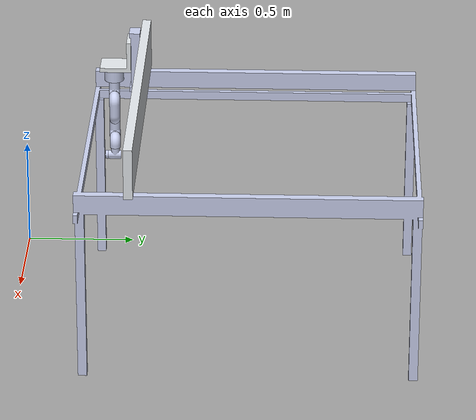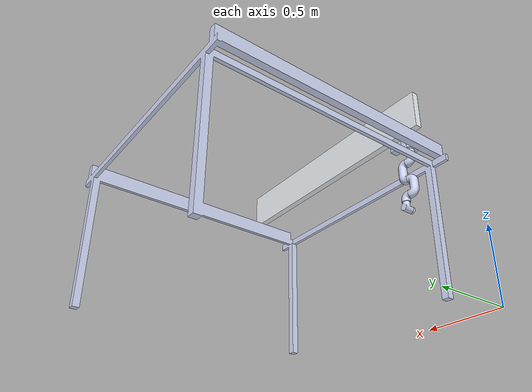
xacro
<?xml version="1.0"?>
<robot xmlns:xacro="http://www.ros.org/wiki/xacro" name="mini_TREX_complete">
    <xacro:arg name="initial_positions_file" default="initial_positions.yaml" />

    <!-- Import mini_TREX_complete urdf file -->
    <xacro:include filename="$(find test_urdf_mini_trex)/urdf/mini_TREX_complete.urdf" />

    <!-- Import control_xacro -->
    <xacro:include filename="mini_TREX_complete.ros2_control.xacro" />

    <xacro:mini_TREX_complete_ros2_control name="FakeSystem" initial_positions_file="$(arg initial_positions_file)"/>

</robot>

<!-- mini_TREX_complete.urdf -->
<robot
  name="mini_TREX_complete">
<link name="base_footprint">
    <visual>
        <origin xyz="0 0 0" rpy="0 0 0" />
        <geometry>
            <box size="0.001 0.001 0.001" />
        </geometry>
    </visual>
</link>

<joint name="base_footprint_joint" type="fixed">
    <origin xyz="0 0 0.001" rpy="0 0 0" />
    <parent link="base_footprint"/>
    <child link="base_link" />
</joint>
  <link
    name="base_link">
    <inertial>
      <origin
        xyz="0.71563 1.093 0.7213"
        rpy="0 0 0" />
      <mass
        value="19.498" />
      <inertia
        ixx="7.4094"
        ixy="-1.3444E-14"
        ixz="2.2885E-14"
        iyy="9.2813"
        iyz="-1.6175E-14"
        izz="14.559" />
    </inertial>
    <visual>
      <origin
        xyz="0 0 0"
        rpy="0 0 0" />
      <geometry>
        <mesh
          filename="package://test_urdf_mini_trex/meshes/visual/base_link.STL" />
      </geometry>
      <material
        name="">
        <color
          rgba="0.79216 0.81961 0.93333 1" />
      </material>
    </visual>
    <collision>
      <origin
        xyz="0 0 0"
        rpy="0 0 0" />
      <geometry>
        <mesh
          filename="package://test_urdf_mini_trex/meshes/visual/base_link.STL" />
      </geometry>
    </collision>
  </link>
  <link
    name="y_axis_link">
    <inertial>
      <origin
        xyz="-0.6945 -0.24 0.115"
        rpy="0 0 0" />
      <mass
        value="13.901" />
      <inertia
        ixx="0.063135"
        ixy="1.1276E-17"
        ixz="-1.8504E-17"
        iyy="2.7061"
        iyz="-3.8485E-19"
        izz="2.6467" />
    </inertial>
    <visual>
      <origin
        xyz="0 0 0"
        rpy="0 0 0" />
      <geometry>
        <mesh
          filename="package://test_urdf_mini_trex/meshes/visual/y_axis_link.STL" />
      </geometry>
      <material
        name="">
        <color
          rgba="0.89412 0.91373 0.92941 1" />
      </material>
    </visual>
    <collision>
      <origin
        xyz="0 0 0"
        rpy="0 0 0" />
      <geometry>
        <mesh
          filename="package://test_urdf_mini_trex/meshes/visual/y_axis_link.STL" />
      </geometry>
    </collision>
  </link>
  <joint
    name="y_axis_joint"
    type="prismatic">
    <origin
      xyz="0.015632 0.33748 0.8999"
      rpy="0 0 3.1416" />
    <parent
      link="base_link" />
    <child
      link="y_axis_link" />
    <axis
      xyz="0 1 0" />
    <limit
      lower="-1.24"
      upper="0"
      effort="3"
      velocity="3" />
  </joint>
  <link
    name="x_axis_link">
    <inertial>
      <origin
        xyz="-0.1905 -0.021667 0.085"
        rpy="0 0 0" />
      <mass
        value="1.008" />
      <inertia
        ixx="0.0076264"
        ixy="3.5899E-20"
        ixz="1.5455E-19"
        iyy="0.0080033"
        iyz="1.772E-19"
        izz="0.00069832" />
    </inertial>
    <visual>
      <origin
        xyz="0 0 0"
        rpy="0 0 0" />
      <geometry>
        <mesh
          filename="package://test_urdf_mini_trex/meshes/visual/x_axis_link.STL" />
      </geometry>
      <material
        name="">
        <color
          rgba="0.79216 0.81961 0.93333 1" />
      </material>
    </visual>
    <collision>
      <origin
        xyz="0 0 0"
        rpy="0 0 0" />
      <geometry>
        <mesh
          filename="package://test_urdf_mini_trex/meshes/visual/x_axis_link.STL" />
      </geometry>
    </collision>
  </link>
  <joint
    name="x_axis_joint"
    type="prismatic">
    <origin
      xyz="0.061 -0.22 0.19"
      rpy="3.1416 0 0" />
    <parent
      link="y_axis_link" />
    <child
      link="x_axis_link" />
    <axis
      xyz="1 0 0" />
    <limit
      lower="-1.05"
      upper="0"
      effort="3"
      velocity="3" />
  </joint>
  <link
    name="z_axis_link">
    <inertial>
      <origin
        xyz="1.7375E-14 -0.060565 0.14244"
        rpy="0 0 0" />
      <mass
        value="1.8225" />
      <inertia
        ixx="0.007026"
        ixy="1.5492E-19"
        ixz="7.9273E-19"
        iyy="0.005886"
        iyz="0.0020532"
        izz="0.005886" />
    </inertial>
    <visual>
      <origin
        xyz="0 0 0"
        rpy="0 0 0" />
      <geometry>
        <mesh
          filename="package://test_urdf_mini_trex/meshes/visual/z_axis_link.STL" />
      </geometry>
      <material
        name="">
        <color
          rgba="0.89804 0.91765 0.92941 1" />
      </material>
    </visual>
    <collision>
      <origin
        xyz="0 0 0"
        rpy="0 0 0" />
      <geometry>
        <mesh
          filename="package://test_urdf_mini_trex/meshes/visual/z_axis_link.STL" />
      </geometry>
    </collision>
  </link>
  <joint
    name="z_axis_joint"
    type="prismatic">
    <origin
      xyz="-0.1905 -0.025 -0.061"
      rpy="0 0 0" />
    <parent
      link="x_axis_link" />
    <child
      link="z_axis_link" />
    <axis
      xyz="0 0 -1" />
    <limit
      lower="-0.1"
      upper="0"
      effort="0"
      velocity="0" />
  </joint>
  <link
    name="fixed_base_manipulator">
    <inertial>
      <origin
        xyz="5.5511E-17 0 0.030575"
        rpy="0 0 0" />
      <mass
        value="0.38902" />
      <inertia
        ixx="0.00031816"
        ixy="5.5227E-21"
        ixz="1.358E-20"
        iyy="0.00031816"
        iyz="-3.1279E-20"
        izz="0.00039388" />
    </inertial>
    <visual>
      <origin
        xyz="0 0 0"
        rpy="0 0 0" />
      <geometry>
        <mesh
          filename="package://test_urdf_mini_trex/meshes/visual/fixed_base_manipulator.STL" />
      </geometry>
      <material
        name="">
        <color
          rgba="0.79216 0.81961 0.93333 1" />
      </material>
    </visual>
    <collision>
      <origin
        xyz="0 0 0"
        rpy="0 0 0" />
      <geometry>
        <mesh
          filename="package://test_urdf_mini_trex/meshes/visual/fixed_base_manipulator.STL" />
      </geometry>
    </collision>
  </link>
  <joint
    name="fixed_base_joint"
    type="fixed">
    <origin
      xyz="0 -0.0995 0.186"
      rpy="0 0 0" />
    <parent
      link="z_axis_link" />
    <child
      link="fixed_base_manipulator" />
    <axis
      xyz="0 0 0" />
  </joint>
  <link
    name="link_1">
    <inertial>
      <origin
        xyz="-0.00471591007394795 0.000327841802531925 0.0449329912291735"
        rpy="0 0 0" />
      <mass
        value="0.182388908186938" />
      <inertia
        ixx="0.000144569969287715"
        ixy="6.05000994865696E-07"
        ixz="2.35810769770445E-05"
        iyy="0.000153230676050563"
        iyz="-1.63931513972334E-06"
        izz="6.57413577887617E-05" />
    </inertial>
    <visual>
      <origin
        xyz="0 0 0"
        rpy="0 0 0" />
      <geometry>
        <mesh
          filename="package://test_urdf_mini_trex/meshes/visual/link_1.STL" />
      </geometry>
      <material
        name="">
        <color
          rgba="0.792156862745098 0.819607843137255 0.933333333333333 1" />
      </material>
    </visual>
    <collision>
      <origin
        xyz="0 0 0"
        rpy="0 0 0" />
      <geometry>
        <mesh
          filename="package://test_urdf_mini_trex/meshes/visual/link_1.STL" />
      </geometry>
    </collision>
  </link>
  <joint
    name="joint_1"
    type="revolute">
    <origin
      xyz="0 0 0.06115"
      rpy="0 0 0" />
    <parent
      link="fixed_base_manipulator" />
    <child
      link="link_1" />
    <axis
      xyz="0 0 -1" />
    <limit
      lower="-2.88"
      upper="2.88"
      effort="0"
      velocity="0" />
  </joint>
  <link
    name="link_2">
    <inertial>
      <origin
        xyz="-0.02339 0.001626 0.0552"
        rpy="0 0 0" />
      <mass
        value="0.30501" />
      <inertia
        ixx="0.00059723"
        ixy="1.0995E-06"
        ixz="2.2849E-16"
        iyy="0.00061297"
        iyz="3.277E-15"
        izz="0.00011121" />
    </inertial>
    <visual>
      <origin
        xyz="0 0 0"
        rpy="0 0 0" />
      <geometry>
        <mesh
          filename="package://test_urdf_mini_trex/meshes/visual/link_2.STL" />
      </geometry>
      <material
        name="">
        <color
          rgba="0.79216 0.81961 0.93333 1" />
      </material>
    </visual>
    <collision>
      <origin
        xyz="0 0 0"
        rpy="0 0 0" />
      <geometry>
        <mesh
          filename="package://test_urdf_mini_trex/meshes/visual/link_2.STL" />
      </geometry>
    </collision>
  </link>
  <joint
    name="joint_2"
    type="revolute">
    <origin
      xyz="-0.03721 0.0025868 0.07042"
      rpy="0 0 0" />
    <parent
      link="link_1" />
    <child
      link="link_2" />
    <axis
      xyz="0.99759 -0.069351 0" />
    <limit
      lower="-2.88"
      upper="2.88"
      effort="0"
      velocity="0" />
  </joint>
  <link
    name="link_3">
    <inertial>
      <origin
        xyz="0.022814 -0.001586 0.048"
        rpy="0 0 0" />
      <mass
        value="0.27673" />
      <inertia
        ixx="0.0004455"
        ixy="1.0306E-06"
        ixz="-1.1234E-16"
        iyy="0.00046025"
        iyz="-1.6243E-15"
        izz="0.00010138" />
    </inertial>
    <visual>
      <origin
        xyz="0 0 0"
        rpy="0 0 0" />
      <geometry>
        <mesh
          filename="package://test_urdf_mini_trex/meshes/visual/link_3.STL" />
      </geometry>
      <material
        name="">
        <color
          rgba="0.79216 0.81961 0.93333 1" />
      </material>
    </visual>
    <collision>
      <origin
        xyz="0 0 0"
        rpy="0 0 0" />
      <geometry>
        <mesh
          filename="package://test_urdf_mini_trex/meshes/visual/link_3.STL" />
      </geometry>
    </collision>
  </link>
  <joint
    name="joint_3"
    type="revolute">
    <origin
      xyz="0.0081803 -0.00056868 0.1104"
      rpy="0 0 0" />
    <parent
      link="link_2" />
    <child
      link="link_3" />
    <axis
      xyz="-0.99759 0.069351 0" />
    <limit
      lower="-2.88"
      upper="2.88"
      effort="0"
      velocity="0" />
  </joint>
  <link
    name="link_4">
    <inertial>
      <origin
        xyz="-0.022018 0.0015306 0.011013"
        rpy="0 0 0" />
      <mass
        value="0.12266" />
      <inertia
        ixx="5.2157E-05"
        ixy="4.6769E-07"
        ixz="1.1132E-05"
        iyy="5.8852E-05"
        iyz="-7.7386E-07"
        izz="4.5091E-05" />
    </inertial>
    <visual>
      <origin
        xyz="0 0 0"
        rpy="0 0 0" />
      <geometry>
        <mesh
          filename="package://test_urdf_mini_trex/meshes/visual/link_4.STL" />
      </geometry>
      <material
        name="">
        <color
          rgba="0.79216 0.81961 0.93333 1" />
      </material>
    </visual>
    <collision>
      <origin
        xyz="0 0 0"
        rpy="0 0 0" />
      <geometry>
        <mesh
          filename="package://test_urdf_mini_trex/meshes/visual/link_4.STL" />
      </geometry>
    </collision>
  </link>
  <joint
    name="joint_4"
    type="revolute">
    <origin
      xyz="-0.0081803 0.00056868 0.096"
      rpy="0 0 0" />
    <parent
      link="link_3" />
    <child
      link="link_4" />
    <axis
      xyz="0.99759 -0.069351 0" />
    <limit
      lower="-2.88"
      upper="2.88"
      effort="0"
      velocity="0" />
  </joint>
  <link
    name="link_5">
    <inertial>
      <origin
        xyz="-3.6148E-05 -0.0022159 0.038564"
        rpy="0 0 0" />
      <mass
        value="0.10207" />
      <inertia
        ixx="4.8734E-05"
        ixy="-2.3925E-07"
        ixz="2.6298E-08"
        iyy="3.4054E-05"
        iyz="1.6139E-06"
        izz="3.5955E-05" />
    </inertial>
    <visual>
      <origin
        xyz="0 0 0"
        rpy="0 0 0" />
      <geometry>
        <mesh
          filename="package://test_urdf_mini_trex/meshes/visual/link_5.STL" />
      </geometry>
      <material
        name="">
        <color
          rgba="0.79216 0.81961 0.93333 1" />
      </material>
    </visual>
    <collision>
      <origin
        xyz="0 0 0"
        rpy="0 0 0" />
      <geometry>
        <mesh
          filename="package://test_urdf_mini_trex/meshes/visual/link_5.STL" />
      </geometry>
    </collision>
  </link>
  <joint
    name="joint_5"
    type="revolute">
    <origin
      xyz="-0.02903 0.0020181 0.0325"
      rpy="0 0 0" />
    <parent
      link="link_4" />
    <child
      link="link_5" />
    <axis
      xyz="0 0 -1" />
    <limit
      lower="-2.88"
      upper="2.88"
      effort="0"
      velocity="0" />
  </joint>
  <link
    name="link_6">
    <inertial>
      <origin
        xyz="-0.00010996 -0.0067491 1.1102E-16"
        rpy="0 0 0" />
      <mass
        value="0.016965" />
      <inertia
        ixx="1.9545E-06"
        ixy="2.3436E-08"
        ixz="-9.6566E-25"
        iyy="3.3925E-06"
        iyz="-5.9268E-23"
        izz="1.9541E-06" />
    </inertial>
    <visual>
      <origin
        xyz="0 0 0"
        rpy="0 0 0" />
      <geometry>
        <mesh
          filename="package://test_urdf_mini_trex/meshes/visual/link_6.STL" />
      </geometry>
      <material
        name="">
        <color
          rgba="0.79216 0.81961 0.93333 1" />
      </material>
    </visual>
    <collision>
      <origin
        xyz="0 0 0"
        rpy="0 0 0" />
      <geometry>
        <mesh
          filename="package://test_urdf_mini_trex/meshes/visual/link_6.STL" />
      </geometry>
    </collision>
  </link>
  <joint
    name="joint_6"
    type="revolute">
    <origin
      xyz="-0.0005376 -0.032996 0.0457"
      rpy="0 0 0" />
    <parent
      link="link_5" />
    <child
      link="link_6" />
    <axis
      xyz="-0.016291 -0.99987 0" />
    <limit
      lower="-3.14"
      upper="3.14"
      effort="0"
      velocity="0" />
  </joint>
</robot>
